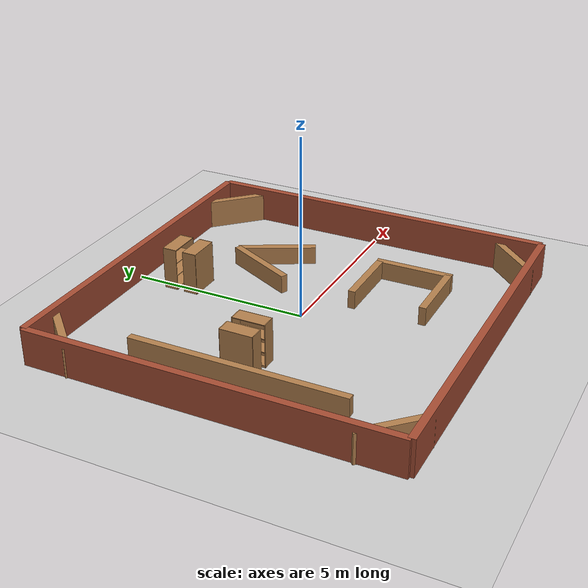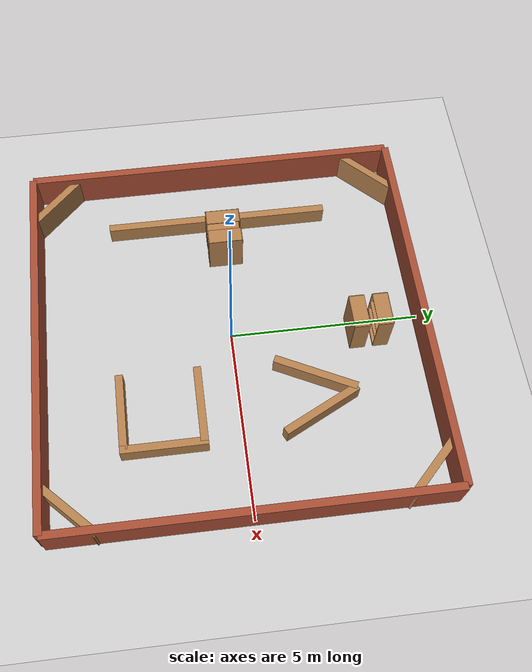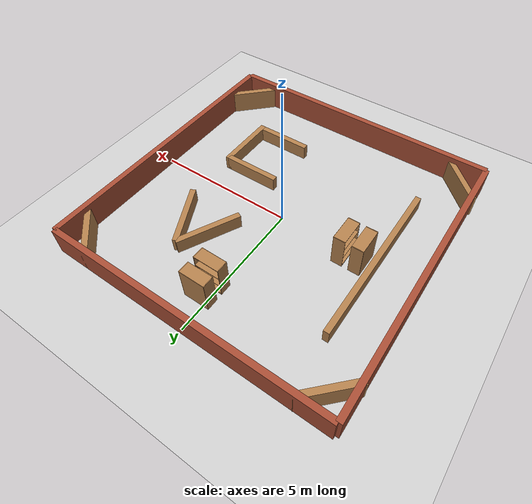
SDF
<sdf version="1.7">
 <world name="default">
  <plugin name="gazebo_ros_state" filename="libgazebo_ros_state.so">
   <ros><argument>model_states:=model_states_demo</argument></ros>
   <update_rate>1.0</update_rate>
  </plugin>
  <light name="sun" type="directional">
   <pose>0 0 10 0 -0 0</pose>
   <diffuse>0.8 0.8 0.8 1</diffuse>
   <specular>0.2 0.2 0.2 1</specular>
   <attenuation>
    <range>1000</range>
    <constant>0.9</constant>
    <linear>0.01</linear>
    <quadratic>0.001</quadratic>
   </attenuation>
   <direction>-0.5 0.1 -0.9</direction>
   <spot><inner_angle>0</inner_angle><outer_angle>0</outer_angle><falloff>0</falloff></spot>
  </light>
  <model name="ground_plane">
   <static>1</static>
   <link name="link">
    <collision name="collision">
     <geometry><plane><normal>0 0 1</normal><size>100 100</size></plane></geometry>
     <surface><friction><ode><mu>100</mu><mu2>50</mu2></ode></friction></surface>
    </collision>
    <visual name="visual">
     <cast_shadows>0</cast_shadows>
     <geometry><plane><normal>0 0 1</normal><size>100 100</size></plane></geometry>
     <material>
      <script><uri>file://media/materials/scripts/gazebo.material</uri><name>Gazebo/Grey</name></script>
     </material>
    </visual>
   </link>
  </model>
  <gravity>0 0 -9.8</gravity>
  <magnetic_field>6e-06 2.3e-05 -4.2e-05</magnetic_field>
  <atmosphere type="adiabatic"/>
  <physics type="ode">
   <max_step_size>0.001</max_step_size>
   <real_time_factor>1</real_time_factor>
   <real_time_update_rate>1000</real_time_update_rate>
  </physics>
  <scene><ambient>0.4 0.4 0.4 1</ambient><background>0.7 0.7 0.7 1</background><shadows>1</shadows></scene>
  <audio><device>default</device></audio>
  <spherical_coordinates>
   <surface_model>EARTH_WGS84</surface_model>
   <latitude_deg>0</latitude_deg>
   <longitude_deg>0</longitude_deg>
   <elevation>0</elevation>
   <heading_deg>0</heading_deg>
  </spherical_coordinates>
  <model name="brick_wall">
   <link name="link_4">
    <inertial><mass>1</mass></inertial>
    <visual name="visual">
     <geometry><box><size>10 0.2 1</size></box></geometry>
     <material>
      <lighting>1</lighting>
      <script><uri>file://media/materials/scripts/gazebo.material</uri><name>Gazebo/Bricks</name></script>
      <shader type="pixel"><normal_map>__default__</normal_map></shader>
      <ambient>1 1 1 1</ambient>
      <diffuse>1 1 1 1</diffuse>
      <specular>0.2 0.2 0.2 1</specular>
      <emissive>0 0 0 1</emissive>
     </material>
    </visual>
    <collision name="collision"><geometry><box><size>10 0.2 1</size></box></geometry></collision>
   </link>
   <static>1</static>
   <pose>-0 5 0.5 0 -0 0</pose>
  </model>
  <model name="brick_wall_0">
   <link name="link_4">
    <inertial><mass>1</mass></inertial>
    <visual name="visual">
     <geometry><box><size>10 0.2 1</size></box></geometry>
     <material>
      <lighting>1</lighting>
      <script><uri>file://media/materials/scripts/gazebo.material</uri><name>Gazebo/Bricks</name></script>
      <shader type="pixel"><normal_map>__default__</normal_map></shader>
      <ambient>1 1 1 1</ambient>
      <diffuse>1 1 1 1</diffuse>
      <specular>0.2 0.2 0.2 1</specular>
      <emissive>0 0 0 1</emissive>
     </material>
    </visual>
    <collision name="collision"><geometry><box><size>10 0.2 1</size></box></geometry></collision>
   </link>
   <static>1</static>
   <pose>-0 -5 0.500001 0 -0 0</pose>
  </model>
  <model name="brick_wall_1">
   <link name="link_4">
    <inertial><mass>1</mass></inertial>
    <visual name="visual">
     <geometry><box><size>10 0.2 1</size></box></geometry>
     <material>
      <lighting>1</lighting>
      <script><uri>file://media/materials/scripts/gazebo.material</uri><name>Gazebo/Bricks</name></script>
      <shader type="pixel"><normal_map>__default__</normal_map></shader>
      <ambient>1 1 1 1</ambient>
      <diffuse>1 1 1 1</diffuse>
      <specular>0.2 0.2 0.2 1</specular>
      <emissive>0 0 0 1</emissive>
     </material>
    </visual>
    <collision name="collision"><geometry><box><size>10 0.2 1</size></box></geometry></collision>
   </link>
   <static>1</static>
   <pose>-5 0 0.5 0 0 -1.56843</pose>
  </model>
  <model name="brick_wall_2">
   <link name="link_4">
    <inertial><mass>1</mass></inertial>
    <visual name="visual">
     <geometry><box><size>10 0.2 1</size></box></geometry>
     <material>
      <lighting>1</lighting>
      <script><uri>file://media/materials/scripts/gazebo.material</uri><name>Gazebo/Bricks</name></script>
      <shader type="pixel"><normal_map>__default__</normal_map></shader>
      <ambient>1 1 1 1</ambient>
      <diffuse>1 1 1 1</diffuse>
      <specular>0.2 0.2 0.2 1</specular>
      <emissive>0 0 0 1</emissive>
     </material>
    </visual>
    <collision name="collision"><geometry><box><size>10 0.2 1</size></box></geometry></collision>
   </link>
   <static>1</static>
   <pose>5 -0 0.5 0 0 -1.5708</pose>
  </model>
  <model name="wood_corner">
   <link name="link_5">
    <inertial><mass>0</mass></inertial>
    <pose>-0 0 0 0 -0 0.785</pose>
    <visual name="visual">
     <geometry><box><size>0.2 1.9 1</size></box></geometry>
     <material>
      <lighting>1</lighting>
      <script><uri>file://media/materials/scripts/gazebo.material</uri><name>Gazebo/Wood</name></script>
      <shader type="pixel"><normal_map>__default__</normal_map></shader>
      <ambient>0.3 0.3 0.3 1</ambient>
      <diffuse>0.7 0.7 0.7 1</diffuse>
      <specular>0.01 0.01 0.01 1</specular>
      <emissive>0 0 0 1</emissive>
     </material>
    </visual>
    <collision name="collision"><geometry><box><size>0.2 1.9 1</size></box></geometry></collision>
   </link>
   <static>1</static>
   <pose>4.40116 4.36048 0.3 0 -0 0</pose>
  </model>
  <model name="wood_corner_0">
   <link name="link_5">
    <inertial><mass>0</mass></inertial>
    <pose>-0 0 0 0 -0 0.785</pose>
    <visual name="visual">
     <geometry><box><size>0.2 1.9 1</size></box></geometry>
     <material>
      <lighting>1</lighting>
      <script><uri>file://media/materials/scripts/gazebo.material</uri><name>Gazebo/Wood</name></script>
      <shader type="pixel"><normal_map>__default__</normal_map></shader>
      <ambient>0.3 0.3 0.3 1</ambient>
      <diffuse>0.7 0.7 0.7 1</diffuse>
      <specular>0.01 0.01 0.01 1</specular>
      <emissive>0 0 0 1</emissive>
     </material>
    </visual>
    <collision name="collision"><geometry><box><size>0.2 1.9 1</size></box></geometry></collision>
   </link>
   <static>1</static>
   <pose>-4.40116 4.36048 0.3 0 0 -1.56218</pose>
  </model>
  <model name="wood_corner_1">
   <link name="link_5">
    <inertial><mass>0</mass></inertial>
    <pose>-0 0 0 0 -0 0.785</pose>
    <visual name="visual">
     <geometry><box><size>0.2 1.9 1</size></box></geometry>
     <material>
      <lighting>1</lighting>
      <script><uri>file://media/materials/scripts/gazebo.material</uri><name>Gazebo/Wood</name></script>
      <shader type="pixel"><normal_map>__default__</normal_map></shader>
      <ambient>0.3 0.3 0.3 1</ambient>
      <diffuse>0.7 0.7 0.7 1</diffuse>
      <specular>0.01 0.01 0.01 1</specular>
      <emissive>0 0 0 1</emissive>
     </material>
    </visual>
    <collision name="collision"><geometry><box><size>0.2 1.9 1</size></box></geometry></collision>
   </link>
   <static>1</static>
   <pose>-4.40116 -4.36048 0.3 0 -0 0</pose>
  </model>
  <model name="wood_corner_2">
   <link name="link_5">
    <inertial><mass>0</mass></inertial>
    <pose>-0 0 0 0 -0 0.785</pose>
    <visual name="visual">
     <geometry><box><size>0.2 1.9 1</size></box></geometry>
     <material>
      <lighting>1</lighting>
      <script><uri>file://media/materials/scripts/gazebo.material</uri><name>Gazebo/Wood</name></script>
      <shader type="pixel"><normal_map>__default__</normal_map></shader>
      <ambient>0.3 0.3 0.3 1</ambient>
      <diffuse>0.7 0.7 0.7 1</diffuse>
      <specular>0.01 0.01 0.01 1</specular>
      <emissive>0 0 0 1</emissive>
     </material>
    </visual>
    <collision name="collision"><geometry><box><size>0.2 1.9 1</size></box></geometry></collision>
   </link>
   <static>1</static>
   <pose>4.40116 -4.36048 0.3 0 0 -1.56218</pose>
  </model>
  <model name="triangle_trap">
   <link name="link_0">
    <pose>0.5 0 0 0 -0 0.4636</pose>
    <visual name="visual">
     <geometry><box><size>0.2 2.21 1</size></box></geometry>
     <material>
      <lighting>1</lighting>
      <script><uri>file://media/materials/scripts/gazebo.material</uri><name>Gazebo/Wood</name></script>
      <shader type="pixel"><normal_map>__default__</normal_map></shader>
      <ambient>0.3 0.3 0.3 1</ambient>
      <diffuse>0.7 0.7 0.7 1</diffuse>
      <specular>0.01 0.01 0.01 1</specular>
      <emissive>0 0 0 1</emissive>
     </material>
    </visual>
    <collision name="collision"><geometry><box><size>0.2 2.236 1</size></box></geometry></collision>
   </link>
   <link name="link_1">
    <pose>-0.5 0 0 0 0 -0.4636</pose>
    <visual name="visual">
     <geometry><box><size>0.2 2.236 1</size></box></geometry>
     <material>
      <lighting>1</lighting>
      <script><uri>file://media/materials/scripts/gazebo.material</uri><name>Gazebo/Wood</name></script>
      <shader type="pixel"><normal_map>__default__</normal_map></shader>
      <ambient>0.3 0.3 0.3 1</ambient>
      <diffuse>0.7 0.7 0.7 1</diffuse>
      <specular>0.01 0.01 0.01 1</specular>
      <emissive>0 0 0 1</emissive>
     </material>
    </visual>
    <collision name="collision"><geometry><box><size>0.2 2.236 1</size></box></geometry></collision>
   </link>
   <static>1</static>
   <pose>2 2 0 0 -0 0</pose>
  </model>
  <model name="square_trap">
   <link name="link_0">
    <pose>-1 0 0 0 -0 0</pose>
    <visual name="visual">
     <geometry><box><size>0.2 2 1</size></box></geometry>
     <material>
      <lighting>1</lighting>
      <script><uri>file://media/materials/scripts/gazebo.material</uri><name>Gazebo/Wood</name></script>
      <shader type="pixel"><normal_map>__default__</normal_map></shader>
      <ambient>1 1 1 1</ambient>
      <diffuse>1 1 1 1</diffuse>
      <specular>0.2 0.2 0.2 1</specular>
      <emissive>0 0 0 1</emissive>
     </material>
    </visual>
    <collision name="collision"><geometry><box><size>0.2 2 1</size></box></geometry></collision>
   </link>
   <link name="link_1">
    <pose>-0 1 0 0 -0 0</pose>
    <visual name="visual">
     <geometry><box><size>2.2 0.2 1</size></box></geometry>
     <material>
      <lighting>1</lighting>
      <script><uri>file://media/materials/scripts/gazebo.material</uri><name>Gazebo/Wood</name></script>
      <shader type="pixel"><normal_map>__default__</normal_map></shader>
      <ambient>1 1 1 1</ambient>
      <diffuse>1 1 1 1</diffuse>
      <specular>0.2 0.2 0.2 1</specular>
      <emissive>0 0 0 1</emissive>
     </material>
    </visual>
    <collision name="collision"><geometry><box><size>2.4 0.2 1</size></box></geometry></collision>
   </link>
   <link name="link_2">
    <pose>1 -0 0 0 -0 0</pose>
    <visual name="visual">
     <geometry><box><size>0.2 2 1</size></box></geometry>
     <material>
      <lighting>1</lighting>
      <script><uri>file://media/materials/scripts/gazebo.material</uri><name>Gazebo/Wood</name></script>
      <shader type="pixel"><normal_map>__default__</normal_map></shader>
      <ambient>1 1 1 1</ambient>
      <diffuse>1 1 1 1</diffuse>
      <specular>0.2 0.2 0.2 1</specular>
      <emissive>0 0 0 1</emissive>
     </material>
    </visual>
    <collision name="collision"><geometry><box><size>0.2 2 1</size></box></geometry></collision>
   </link>
   <static>1</static>
   <pose>2 -2 0 0 -0 -1.569</pose>
  </model>
  <model name="parting_wood_wall">
   <link name="link_0">
    <visual name="visual">
     <geometry><box><size>0.2 6 1</size></box></geometry>
     <material>
      <lighting>1</lighting>
      <script><uri>file://media/materials/scripts/gazebo.material</uri><name>Gazebo/Wood</name></script>
      <shader type="pixel"><normal_map>__default__</normal_map></shader>
      <ambient>1 1 1 1</ambient>
      <diffuse>1 1 1 1</diffuse>
      <specular>0.2 0.2 0.2 1</specular>
      <emissive>0 0 0 1</emissive>
     </material>
    </visual>
    <collision name="collision"><geometry><box><size>0.2 6 1</size></box></geometry></collision>
   </link>
   <static>1</static>
   <pose>-3.5 0 0 0 -0 0</pose>
  </model>
  <model name="bookshelfs">
   <model name="bookshelf">
    <static>1</static>
    <link name="link">
     <inertial><mass>1</mass></inertial>
     <collision name="back">
      <pose>0 0.005 0.6 0 -0 0</pose>
      <geometry><box><size>0.9 0.01 1.2</size></box></geometry>
     </collision>
     <visual name="visual1">
      <pose>0 0.005 0.6 0 -0 0</pose>
      <geometry><box><size>0.9 0.01 1.2</size></box></geometry>
      <material>
       <script><uri>file://media/materials/scripts/gazebo.material</uri><name>Gazebo/Wood</name></script>
      </material>
     </visual>
     <collision name="left_side">
      <pose>0.45 -0.195 0.6 0 -0 0</pose>
      <geometry><box><size>0.02 0.4 1.2</size></box></geometry>
     </collision>
     <visual name="visual2">
      <pose>0.45 -0.195 0.6 0 -0 0</pose>
      <geometry><box><size>0.02 0.4 1.2</size></box></geometry>
      <material>
       <script><uri>file://media/materials/scripts/gazebo.material</uri><name>Gazebo/Wood</name></script>
      </material>
     </visual>
     <collision name="right_side">
      <pose>-0.45 -0.195 0.6 0 -0 0</pose>
      <geometry><box><size>0.02 0.4 1.2</size></box></geometry>
     </collision>
     <visual name="visual3">
      <pose>-0.45 -0.195 0.6 0 -0 0</pose>
      <geometry><box><size>0.02 0.4 1.2</size></box></geometry>
      <material>
       <script><uri>file://media/materials/scripts/gazebo.material</uri><name>Gazebo/Wood</name></script>
      </material>
     </visual>
     <collision name="bottom">
      <pose>0 -0.195 0.03 0 -0 0</pose>
      <geometry><box><size>0.88 0.4 0.06</size></box></geometry>
     </collision>
     <visual name="visual4">
      <pose>0 -0.195 0.03 0 -0 0</pose>
      <geometry><box><size>0.88 0.4 0.06</size></box></geometry>
      <material>
       <script><uri>file://media/materials/scripts/gazebo.material</uri><name>Gazebo/Wood</name></script>
      </material>
     </visual>
     <collision name="top">
      <pose>0 -0.195 1.19 0 -0 0</pose>
      <geometry><box><size>0.88 0.4 0.02</size></box></geometry>
     </collision>
     <visual name="visual5">
      <pose>0 -0.195 1.19 0 -0 0</pose>
      <geometry><box><size>0.88 0.4 0.02</size></box></geometry>
      <material>
       <script><uri>file://media/materials/scripts/gazebo.material</uri><name>Gazebo/Wood</name></script>
      </material>
     </visual>
     <collision name="low_shelf">
      <pose>0 -0.195 0.43 0 -0 0</pose>
      <geometry><box><size>0.88 0.4 0.02</size></box></geometry>
     </collision>
     <visual name="visual6">
      <pose>0 -0.195 0.43 0 -0 0</pose>
      <geometry><box><size>0.88 0.4 0.02</size></box></geometry>
      <material>
       <script><uri>file://media/materials/scripts/gazebo.material</uri><name>Gazebo/Wood</name></script>
      </material>
     </visual>
     <collision name="high_shelf">
      <pose>0 -0.195 0.8 0 -0 0</pose>
      <geometry><box><size>0.88 0.4 0.02</size></box></geometry>
     </collision>
     <visual name="visual7">
      <pose>0 -0.195 0.8 0 -0 0</pose>
      <geometry><box><size>0.88 0.4 0.02</size></box></geometry>
      <material>
       <script><uri>file://media/materials/scripts/gazebo.material</uri><name>Gazebo/Wood</name></script>
      </material>
     </visual>
    </link>
    <pose>-0 0.5 0 0 -0 0</pose>
   </model>
   <model name="bookshelf_0">
    <static>1</static>
    <link name="link">
     <inertial><mass>1</mass></inertial>
     <collision name="back">
      <pose>0 0.005 0.6 0 -0 0</pose>
      <geometry><box><size>0.9 0.01 1.2</size></box></geometry>
     </collision>
     <visual name="visual1">
      <pose>0 0.005 0.6 0 -0 0</pose>
      <geometry><box><size>0.9 0.01 1.2</size></box></geometry>
      <material>
       <script><uri>file://media/materials/scripts/gazebo.material</uri><name>Gazebo/Wood</name></script>
      </material>
     </visual>
     <collision name="left_side">
      <pose>0.45 -0.195 0.6 0 -0 0</pose>
      <geometry><box><size>0.02 0.4 1.2</size></box></geometry>
     </collision>
     <visual name="visual2">
      <pose>0.45 -0.195 0.6 0 -0 0</pose>
      <geometry><box><size>0.02 0.4 1.2</size></box></geometry>
      <material>
       <script><uri>file://media/materials/scripts/gazebo.material</uri><name>Gazebo/Wood</name></script>
      </material>
     </visual>
     <collision name="right_side">
      <pose>-0.45 -0.195 0.6 0 -0 0</pose>
      <geometry><box><size>0.02 0.4 1.2</size></box></geometry>
     </collision>
     <visual name="visual3">
      <pose>-0.45 -0.195 0.6 0 -0 0</pose>
      <geometry><box><size>0.02 0.4 1.2</size></box></geometry>
      <material>
       <script><uri>file://media/materials/scripts/gazebo.material</uri><name>Gazebo/Wood</name></script>
      </material>
     </visual>
     <collision name="bottom">
      <pose>0 -0.195 0.03 0 -0 0</pose>
      <geometry><box><size>0.88 0.4 0.06</size></box></geometry>
     </collision>
     <visual name="visual4">
      <pose>0 -0.195 0.03 0 -0 0</pose>
      <geometry><box><size>0.88 0.4 0.06</size></box></geometry>
      <material>
       <script><uri>file://media/materials/scripts/gazebo.material</uri><name>Gazebo/Wood</name></script>
      </material>
     </visual>
     <collision name="top">
      <pose>0 -0.195 1.19 0 -0 0</pose>
      <geometry><box><size>0.88 0.4 0.02</size></box></geometry>
     </collision>
     <visual name="visual5">
      <pose>0 -0.195 1.19 0 -0 0</pose>
      <geometry><box><size>0.88 0.4 0.02</size></box></geometry>
      <material>
       <script><uri>file://media/materials/scripts/gazebo.material</uri><name>Gazebo/Wood</name></script>
      </material>
     </visual>
     <collision name="low_shelf">
      <pose>0 -0.195 0.43 0 -0 0</pose>
      <geometry><box><size>0.88 0.4 0.02</size></box></geometry>
     </collision>
     <visual name="visual6">
      <pose>0 -0.195 0.43 0 -0 0</pose>
      <geometry><box><size>0.88 0.4 0.02</size></box></geometry>
      <material>
       <script><uri>file://media/materials/scripts/gazebo.material</uri><name>Gazebo/Wood</name></script>
      </material>
     </visual>
     <collision name="high_shelf">
      <pose>0 -0.195 0.8 0 -0 0</pose>
      <geometry><box><size>0.88 0.4 0.02</size></box></geometry>
     </collision>
     <visual name="visual7">
      <pose>0 -0.195 0.8 0 -0 0</pose>
      <geometry><box><size>0.88 0.4 0.02</size></box></geometry>
      <material>
       <script><uri>file://media/materials/scripts/gazebo.material</uri><name>Gazebo/Wood</name></script>
      </material>
     </visual>
    </link>
    <pose>0 -0.5 0 0 -0 3.14159</pose>
   </model>
   <static>1</static>
   <pose>0.254633 3.57694 0 0 -0 0</pose>
  </model>
  <model name="bookshelfs_0">
   <model name="bookshelf">
    <static>1</static>
    <link name="link">
     <inertial><mass>1</mass></inertial>
     <collision name="back">
      <pose>0 0.005 0.6 0 -0 0</pose>
      <geometry><box><size>0.9 0.01 1.2</size></box></geometry>
     </collision>
     <visual name="visual1">
      <pose>0 0.005 0.6 0 -0 0</pose>
      <geometry><box><size>0.9 0.01 1.2</size></box></geometry>
      <material>
       <script><uri>file://media/materials/scripts/gazebo.material</uri><name>Gazebo/Wood</name></script>
      </material>
     </visual>
     <collision name="left_side">
      <pose>0.45 -0.195 0.6 0 -0 0</pose>
      <geometry><box><size>0.02 0.4 1.2</size></box></geometry>
     </collision>
     <visual name="visual2">
      <pose>0.45 -0.195 0.6 0 -0 0</pose>
      <geometry><box><size>0.02 0.4 1.2</size></box></geometry>
      <material>
       <script><uri>file://media/materials/scripts/gazebo.material</uri><name>Gazebo/Wood</name></script>
      </material>
     </visual>
     <collision name="right_side">
      <pose>-0.45 -0.195 0.6 0 -0 0</pose>
      <geometry><box><size>0.02 0.4 1.2</size></box></geometry>
     </collision>
     <visual name="visual3">
      <pose>-0.45 -0.195 0.6 0 -0 0</pose>
      <geometry><box><size>0.02 0.4 1.2</size></box></geometry>
      <material>
       <script><uri>file://media/materials/scripts/gazebo.material</uri><name>Gazebo/Wood</name></script>
      </material>
     </visual>
     <collision name="bottom">
      <pose>0 -0.195 0.03 0 -0 0</pose>
      <geometry><box><size>0.88 0.4 0.06</size></box></geometry>
     </collision>
     <visual name="visual4">
      <pose>0 -0.195 0.03 0 -0 0</pose>
      <geometry><box><size>0.88 0.4 0.06</size></box></geometry>
      <material>
       <script><uri>file://media/materials/scripts/gazebo.material</uri><name>Gazebo/Wood</name></script>
      </material>
     </visual>
     <collision name="top">
      <pose>0 -0.195 1.19 0 -0 0</pose>
      <geometry><box><size>0.88 0.4 0.02</size></box></geometry>
     </collision>
     <visual name="visual5">
      <pose>0 -0.195 1.19 0 -0 0</pose>
      <geometry><box><size>0.88 0.4 0.02</size></box></geometry>
      <material>
       <script><uri>file://media/materials/scripts/gazebo.material</uri><name>Gazebo/Wood</name></script>
      </material>
     </visual>
     <collision name="low_shelf">
      <pose>0 -0.195 0.43 0 -0 0</pose>
      <geometry><box><size>0.88 0.4 0.02</size></box></geometry>
     </collision>
     <visual name="visual6">
      <pose>0 -0.195 0.43 0 -0 0</pose>
      <geometry><box><size>0.88 0.4 0.02</size></box></geometry>
      <material>
       <script><uri>file://media/materials/scripts/gazebo.material</uri><name>Gazebo/Wood</name></script>
      </material>
     </visual>
     <collision name="high_shelf">
      <pose>0 -0.195 0.8 0 -0 0</pose>
      <geometry><box><size>0.88 0.4 0.02</size></box></geometry>
     </collision>
     <visual name="visual7">
      <pose>0 -0.195 0.8 0 -0 0</pose>
      <geometry><box><size>0.88 0.4 0.02</size></box></geometry>
      <material>
       <script><uri>file://media/materials/scripts/gazebo.material</uri><name>Gazebo/Wood</name></script>
      </material>
     </visual>
    </link>
    <pose>-0 0.5 0 0 -0 0</pose>
   </model>
   <model name="bookshelf_0">
    <static>1</static>
    <link name="link">
     <inertial><mass>1</mass></inertial>
     <collision name="back">
      <pose>0 0.005 0.6 0 -0 0</pose>
      <geometry><box><size>0.9 0.01 1.2</size></box></geometry>
     </collision>
     <visual name="visual1">
      <pose>0 0.005 0.6 0 -0 0</pose>
      <geometry><box><size>0.9 0.01 1.2</size></box></geometry>
      <material>
       <script><uri>file://media/materials/scripts/gazebo.material</uri><name>Gazebo/Wood</name></script>
      </material>
     </visual>
     <collision name="left_side">
      <pose>0.45 -0.195 0.6 0 -0 0</pose>
      <geometry><box><size>0.02 0.4 1.2</size></box></geometry>
     </collision>
     <visual name="visual2">
      <pose>0.45 -0.195 0.6 0 -0 0</pose>
      <geometry><box><size>0.02 0.4 1.2</size></box></geometry>
      <material>
       <script><uri>file://media/materials/scripts/gazebo.material</uri><name>Gazebo/Wood</name></script>
      </material>
     </visual>
     <collision name="right_side">
      <pose>-0.45 -0.195 0.6 0 -0 0</pose>
      <geometry><box><size>0.02 0.4 1.2</size></box></geometry>
     </collision>
     <visual name="visual3">
      <pose>-0.45 -0.195 0.6 0 -0 0</pose>
      <geometry><box><size>0.02 0.4 1.2</size></box></geometry>
      <material>
       <script><uri>file://media/materials/scripts/gazebo.material</uri><name>Gazebo/Wood</name></script>
      </material>
     </visual>
     <collision name="bottom">
      <pose>0 -0.195 0.03 0 -0 0</pose>
      <geometry><box><size>0.88 0.4 0.06</size></box></geometry>
     </collision>
     <visual name="visual4">
      <pose>0 -0.195 0.03 0 -0 0</pose>
      <geometry><box><size>0.88 0.4 0.06</size></box></geometry>
      <material>
       <script><uri>file://media/materials/scripts/gazebo.material</uri><name>Gazebo/Wood</name></script>
      </material>
     </visual>
     <collision name="top">
      <pose>0 -0.195 1.19 0 -0 0</pose>
      <geometry><box><size>0.88 0.4 0.02</size></box></geometry>
     </collision>
     <visual name="visual5">
      <pose>0 -0.195 1.19 0 -0 0</pose>
      <geometry><box><size>0.88 0.4 0.02</size></box></geometry>
      <material>
       <script><uri>file://media/materials/scripts/gazebo.material</uri><name>Gazebo/Wood</name></script>
      </material>
     </visual>
     <collision name="low_shelf">
      <pose>0 -0.195 0.43 0 -0 0</pose>
      <geometry><box><size>0.88 0.4 0.02</size></box></geometry>
     </collision>
     <visual name="visual6">
      <pose>0 -0.195 0.43 0 -0 0</pose>
      <geometry><box><size>0.88 0.4 0.02</size></box></geometry>
      <material>
       <script><uri>file://media/materials/scripts/gazebo.material</uri><name>Gazebo/Wood</name></script>
      </material>
     </visual>
     <collision name="high_shelf">
      <pose>0 -0.195 0.8 0 -0 0</pose>
      <geometry><box><size>0.88 0.4 0.02</size></box></geometry>
     </collision>
     <visual name="visual7">
      <pose>0 -0.195 0.8 0 -0 0</pose>
      <geometry><box><size>0.88 0.4 0.02</size></box></geometry>
      <material>
       <script><uri>file://media/materials/scripts/gazebo.material</uri><name>Gazebo/Wood</name></script>
      </material>
     </visual>
    </link>
    <pose>0 -0.5 0 0 -0 3.14159</pose>
   </model>
   <static>1</static>
   <pose>-2.73623 0.117823 0 0 -0 -1.572155</pose>
  </model>
 </world>
</sdf>
